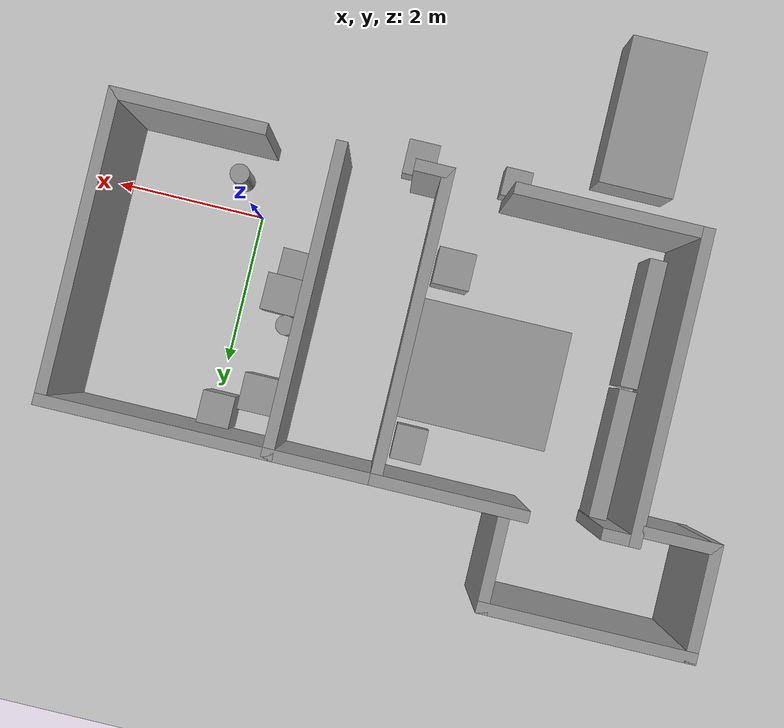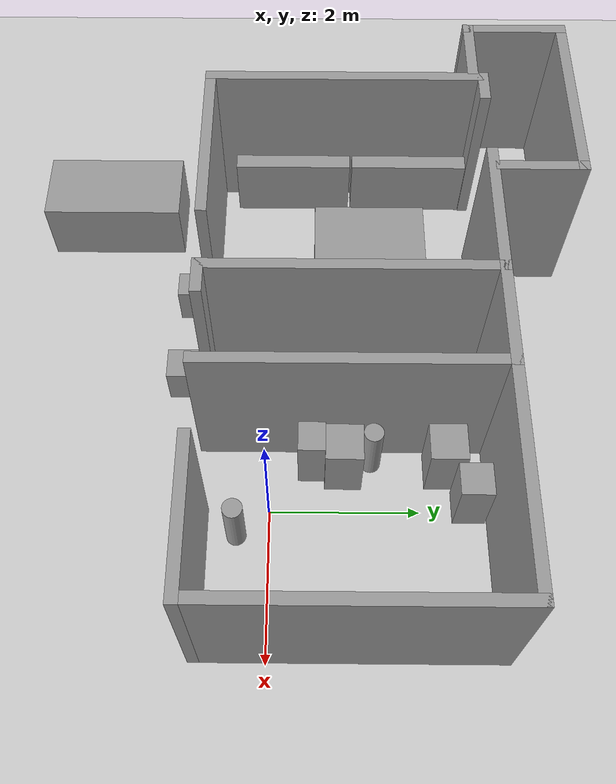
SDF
<sdf version="1.9">
 <world name="default">
  <model name="ground_plane">
   <static>true</static>
   <link name="link">
    <collision name="collision">
     <geometry><plane><normal>0 0 1</normal><size>100 100</size></plane></geometry>
     <surface><friction><ode><mu>100</mu><mu2>50</mu2></ode></friction></surface>
    </collision>
    <visual name="visual">
     <cast_shadows>false</cast_shadows>
     <geometry><plane><normal>0 0 1</normal><size>100 100</size></plane></geometry>
     <material>
      <script><uri>file://media/materials/scripts/gazebo.material</uri><name>Gazebo/Grey</name></script>
     </material>
    </visual>
   </link>
  </model>
  <model name="cma_escritorio">
   <pose>-1.8304 1.03024 0 0 0 0</pose>
   <link name="Wall_11">
    <collision name="Wall_11_Collision">
     <geometry><box><size>2 0.14999999999999999 2.5</size></box></geometry>
     <pose>0 0 1.25 0 0 0</pose>
    </collision>
    <visual name="Wall_11_Visual">
     <pose>0 0 1.25 0 0 0</pose>
     <geometry><box><size>2 0.14999999999999999 2.5</size></box></geometry>
     <material>
      <script><uri>file://media/materials/scripts/gazebo.material</uri><name>Gazebo/Grey</name></script>
      <ambient>1 1 1 1</ambient>
     </material>
    </visual>
    <pose>-1.3999999999999999 1.9299999999999999 0 0 0 3.1415899999999999</pose>
   </link>
   <link name="Wall_2">
    <collision name="Wall_2_Collision">
     <geometry><box><size>4 0.14999999999999999 2.5</size></box></geometry>
     <pose>0 0 1.25 0 0 0</pose>
    </collision>
    <visual name="Wall_2_Visual">
     <pose>0 0 1.25 0 0 0</pose>
     <geometry><box><size>4 0.14999999999999999 2.5</size></box></geometry>
     <material>
      <script><uri>file://media/materials/scripts/gazebo.material</uri><name>Gazebo/Grey</name></script>
      <ambient>1 1 1 1</ambient>
     </material>
    </visual>
    <pose>0.875 0.0050000000000000001 0 0 0 1.5708</pose>
   </link>
   <link name="Wall_25">
    <collision name="Wall_25_Collision">
     <geometry><box><size>2.5 0.14999999999999999 2.5</size></box></geometry>
     <pose>0 0 1.25 0 0 0</pose>
    </collision>
    <visual name="Wall_25_Visual">
     <pose>0 0 1.25 0 0 0</pose>
     <geometry><box><size>2.5 0.14999999999999999 2.5</size></box></geometry>
     <material>
      <script><uri>file://media/materials/scripts/gazebo.material</uri><name>Gazebo/Grey</name></script>
      <ambient>1 1 1 1</ambient>
     </material>
    </visual>
    <pose>-2.5499999999999998 -1.9299999999999999 0 0 0 3.1415899999999999</pose>
   </link>
   <link name="Wall_26">
    <collision name="Wall_26_Collision">
     <geometry><box><size>4 0.14999999999999999 2.5</size></box></geometry>
     <pose>0 0 1.25 0 0 0</pose>
    </collision>
    <visual name="Wall_26_Visual">
     <pose>0 0 1.25 0 0 0</pose>
     <geometry><box><size>4 0.14999999999999999 2.5</size></box></geometry>
     <material>
      <script><uri>file://media/materials/scripts/gazebo.material</uri><name>Gazebo/Grey</name></script>
      <ambient>1 1 1 1</ambient>
     </material>
    </visual>
    <pose>-3.7250000000000001 -0.0050000000000000001 0 0 0 1.5708</pose>
   </link>
   <link name="Wall_27">
    <collision name="Wall_27_Collision">
     <geometry><box><size>0.5 0.14999999999999999 2.5</size></box></geometry>
     <pose>0 0 1.25 0 0 0</pose>
    </collision>
    <visual name="Wall_27_Visual">
     <pose>0 0 1.25 0 0 0</pose>
     <geometry><box><size>0.5 0.14999999999999999 2.5</size></box></geometry>
     <material>
      <script><uri>file://media/materials/scripts/gazebo.material</uri><name>Gazebo/Grey</name></script>
      <ambient>1 1 1 1</ambient>
     </material>
    </visual>
    <pose>-3.5499999999999998 1.9199999999999999 0 0 0 0</pose>
   </link>
   <link name="Wall_3">
    <collision name="Wall_3_Collision">
     <geometry><box><size>3 0.14999999999999999 2.5</size></box></geometry>
     <pose>0 0 1.25 0 0 0</pose>
    </collision>
    <visual name="Wall_3_Visual">
     <pose>0 0 1.25 0 0 0</pose>
     <geometry><box><size>3 0.14999999999999999 2.5</size></box></geometry>
     <material>
      <script><uri>file://media/materials/scripts/gazebo.material</uri><name>Gazebo/Grey</name></script>
      <ambient>1 1 1 1</ambient>
     </material>
    </visual>
    <pose>2.2999999999999998 1.9299999999999999 0 0 0 0</pose>
   </link>
   <link name="Wall_4">
    <collision name="Wall_4_Collision">
     <geometry><box><size>4 0.14999999999999999 2.5</size></box></geometry>
     <pose>0 0 1.25 0 0 0</pose>
    </collision>
    <visual name="Wall_4_Visual">
     <pose>0 0 1.25 0 0 0</pose>
     <geometry><box><size>4 0.14999999999999999 2.5</size></box></geometry>
     <material>
      <script><uri>file://media/materials/scripts/gazebo.material</uri><name>Gazebo/Grey</name></script>
      <ambient>1 1 1 1</ambient>
     </material>
    </visual>
    <pose>3.7250000000000001 0.0050000000000000001 0 0 0 -1.5708</pose>
   </link>
   <link name="Wall_5">
    <collision name="Wall_5_Collision">
     <geometry><box><size>2 0.14999999999999999 2.5</size></box></geometry>
     <pose>0 0 1.25 0 0 0</pose>
    </collision>
    <visual name="Wall_5_Visual">
     <pose>0 0 1.25 0 0 0</pose>
     <geometry><box><size>2 0.14999999999999999 2.5</size></box></geometry>
     <material>
      <script><uri>file://media/materials/scripts/gazebo.material</uri><name>Gazebo/Grey</name></script>
      <ambient>1 1 1 1</ambient>
     </material>
    </visual>
    <pose>2.7999999999999998 -1.9199999999999999 0 0 0 3.1415899999999999</pose>
   </link>
   <link name="Wall_7">
    <collision name="Wall_7_Collision">
     <geometry><box><size>1.5 0.14999999999999999 2.5</size></box></geometry>
     <pose>0 0 1.25 0 0 0</pose>
    </collision>
    <visual name="Wall_7_Visual">
     <pose>0 0 1.25 0 0 0</pose>
     <geometry><box><size>1.5 0.14999999999999999 2.5</size></box></geometry>
     <material>
      <script><uri>file://media/materials/scripts/gazebo.material</uri><name>Gazebo/Grey</name></script>
      <ambient>1 1 1 1</ambient>
     </material>
    </visual>
    <pose>0.20000000000000001 1.9299999999999999 0 0 0 3.1415899999999999</pose>
   </link>
   <link name="Wall_8">
    <collision name="Wall_8_Collision">
     <geometry><box><size>4 0.14999999999999999 2.5</size></box></geometry>
     <pose>0 0 1.25 0 0 0</pose>
    </collision>
    <visual name="Wall_8_Visual">
     <pose>0 0 1.25 0 0 0</pose>
     <geometry><box><size>4 0.14999999999999999 2.5</size></box></geometry>
     <material>
      <script><uri>file://media/materials/scripts/gazebo.material</uri><name>Gazebo/Grey</name></script>
      <ambient>1 1 1 1</ambient>
     </material>
    </visual>
    <pose>-0.47499999999999998 0.0050000000000000001 0 0 0 -1.5708</pose>
   </link>
   <link name="Wall_9">
    <collision name="Wall_9_Collision">
     <geometry><box><size>0.5 0.14999999999999999 2.5</size></box></geometry>
     <pose>0 0 1.25 0 0 0</pose>
    </collision>
    <visual name="Wall_9_Visual">
     <pose>0 0 1.25 0 0 0</pose>
     <geometry><box><size>0.5 0.14999999999999999 2.5</size></box></geometry>
     <material>
      <script><uri>file://media/materials/scripts/gazebo.material</uri><name>Gazebo/Grey</name></script>
      <ambient>1 1 1 1</ambient>
     </material>
    </visual>
    <pose>-0.29999999999999999 -1.9199999999999999 0 0 0 0</pose>
   </link>
   <static>true</static>
  </model>
  <model name="cma_banheiro">
   <pose>-5.2292800000000002 3.4870999999999999 0 0 0 0</pose>
   <link name="Wall_0">
    <collision name="Wall_0_Collision">
     <geometry><box><size>1 0.14999999999999999 2.5</size></box></geometry>
     <pose>0 0 1.25 0 0 0</pose>
    </collision>
    <visual name="Wall_0_Visual">
     <pose>0 0 1.25 0 0 0</pose>
     <geometry><box><size>1 0.14999999999999999 2.5</size></box></geometry>
     <material>
      <script><uri>file://media/materials/scripts/gazebo.material</uri><name>Gazebo/Grey</name></script>
      <ambient>1 1 1 1</ambient>
     </material>
    </visual>
    <pose>-0.875 -0.67500000000000004 0 0 0 3.1415899999999999</pose>
   </link>
   <link name="Wall_1">
    <collision name="Wall_1_Collision">
     <geometry><box><size>1.5 0.14999999999999999 2.5</size></box></geometry>
     <pose>0 0 1.25 0 0 0</pose>
    </collision>
    <visual name="Wall_1_Visual">
     <pose>0 0 1.25 0 0 0</pose>
     <geometry><box><size>1.5 0.14999999999999999 2.5</size></box></geometry>
     <material>
      <script><uri>file://media/materials/scripts/gazebo.material</uri><name>Gazebo/Grey</name></script>
      <ambient>1 1 1 1</ambient>
     </material>
    </visual>
    <pose>-1.3 0 0 0 0 1.5708</pose>
   </link>
   <link name="Wall_2">
    <collision name="Wall_2_Collision">
     <geometry><box><size>2.75 0.14999999999999999 2.5</size></box></geometry>
     <pose>0 0 1.25 0 0 0</pose>
    </collision>
    <visual name="Wall_2_Visual">
     <pose>0 0 1.25 0 0 0</pose>
     <geometry><box><size>2.75 0.14999999999999999 2.5</size></box></geometry>
     <material>
      <script><uri>file://media/materials/scripts/gazebo.material</uri><name>Gazebo/Grey</name></script>
      <ambient>1 1 1 1</ambient>
     </material>
    </visual>
    <pose>0 0.67500000000000004 0 0 0 0</pose>
   </link>
   <link name="Wall_4">
    <collision name="Wall_4_Collision">
     <geometry><box><size>1.25 0.14999999999999999 2.5</size></box></geometry>
     <pose>0 0 1.25 0 0 0</pose>
    </collision>
    <visual name="Wall_4_Visual">
     <pose>0 0 1.25 0 0 0</pose>
     <geometry><box><size>1.25 0.14999999999999999 2.5</size></box></geometry>
     <material>
      <script><uri>file://media/materials/scripts/gazebo.material</uri><name>Gazebo/Grey</name></script>
      <ambient>1 1 1 1</ambient>
     </material>
    </visual>
    <pose>1.3 0.125 0 0 0 -1.5708</pose>
   </link>
   <static>true</static>
  </model>
  <model name="cma_lixo">
   <link name="link_1">
    <pose>0.88296200000000002 1.81586 0.5 0 0 0</pose>
    <inertial>
     <mass>0.068764400000000003</mass>
     <inertia>
      <ixx>0.00602588</ixx>
      <ixy>0</ixy>
      <ixz>0</ixz>
      <iyy>0.00602588</iyy>
      <iyz>0</iyz>
      <izz>0.00059106800000000004</izz>
     </inertia>
    </inertial>
    <visual name="visual">
     <geometry><cylinder><radius>0.13111200000000001</radius><length>1</length></cylinder></geometry>
     <material>
      <lighting>true</lighting>
      <script><uri>file://media/materials/scripts/gazebo.material</uri><name>Gazebo/Grey</name></script>
      <ambient>0.300000012 0.300000012 0.300000012 1</ambient>
      <diffuse>0.699999988 0.699999988 0.699999988 1</diffuse>
      <specular>0.00999999978 0.00999999978 0.00999999978 1</specular>
      <emissive>0 0 0 1</emissive>
     </material>
    </visual>
    <collision name="collision">
     <geometry><cylinder><radius>0.13111200000000001</radius><length>1</length></cylinder></geometry>
     <surface>
      <friction>
       <ode><mu>1</mu><mu2>1</mu2><fdir1>0 0 0</fdir1><slip1>0</slip1><slip2>0</slip2></ode>
       <torsional>
        <coefficient>1</coefficient>
        <patch_radius>0</patch_radius>
        <surface_radius>0</surface_radius>
        <use_patch_radius>true</use_patch_radius>
        <ode><slip>0</slip></ode>
       </torsional>
      </friction>
      <bounce><restitution_coefficient>0</restitution_coefficient><threshold>1000000</threshold></bounce>
      <contact>
       <collide_without_contact>false</collide_without_contact>
       <collide_without_contact_bitmask>1</collide_without_contact_bitmask>
       <collide_bitmask>1</collide_bitmask>
       <ode>
        <soft_cfm>0</soft_cfm>
        <soft_erp>0.20000000000000001</soft_erp>
        <kp>10000000000000</kp>
        <kd>1</kd>
        <max_vel>0.01</max_vel>
        <min_depth>0</min_depth>
       </ode>
       <bullet>
        <split_impulse>true</split_impulse>
        <split_impulse_penetration_threshold>-0.01</split_impulse_penetration_threshold>
        <soft_cfm>0</soft_cfm>
        <soft_erp>0.20000000000000001</soft_erp>
        <kp>10000000000000</kp>
        <kd>1</kd>
       </bullet>
      </contact>
     </surface>
    </collision>
   </link>
   <static>false</static>
   <pose>-1.35785 -1.5254399999999999 -3.9999999999999998e-06 0 0 -0.54309700000000016</pose>
  </model>
  <model name="cma_gaveteiro_pequeno_0">
   <link name="link_0">
    <pose>0.25617400000000001 1.2505500000000001 0.5 0 0 0</pose>
    <inertial>
     <mass>0.18718599999999999</mass>
     <inertia>
      <ixx>0.018509999999999999</ixx>
      <ixy>0</ixy>
      <ixz>0</ixz>
      <iyy>0.018527600000000002</iyy>
      <iyz>0</iyz>
      <izz>0.00583981</izz>
     </inertia>
    </inertial>
    <visual name="visual">
     <geometry><box><size>0.43331700000000001 0.432002 1</size></box></geometry>
     <material>
      <lighting>true</lighting>
      <script><uri>file://media/materials/scripts/gazebo.material</uri><name>Gazebo/Grey</name></script>
      <ambient>0.300000012 0.300000012 0.300000012 1</ambient>
      <diffuse>0.699999988 0.699999988 0.699999988 1</diffuse>
      <specular>0.00999999978 0.00999999978 0.00999999978 1</specular>
      <emissive>0 0 0 1</emissive>
     </material>
    </visual>
    <collision name="collision">
     <geometry><box><size>0.43331700000000001 0.432002 1</size></box></geometry>
     <surface>
      <friction>
       <ode><mu>1</mu><mu2>1</mu2><fdir1>0 0 0</fdir1><slip1>0</slip1><slip2>0</slip2></ode>
       <torsional>
        <coefficient>1</coefficient>
        <patch_radius>0</patch_radius>
        <surface_radius>0</surface_radius>
        <use_patch_radius>true</use_patch_radius>
        <ode><slip>0</slip></ode>
       </torsional>
      </friction>
      <bounce><restitution_coefficient>0</restitution_coefficient><threshold>1000000</threshold></bounce>
      <contact>
       <collide_without_contact>false</collide_without_contact>
       <collide_without_contact_bitmask>1</collide_without_contact_bitmask>
       <collide_bitmask>1</collide_bitmask>
       <ode>
        <soft_cfm>0</soft_cfm>
        <soft_erp>0.20000000000000001</soft_erp>
        <kp>10000000000000</kp>
        <kd>1</kd>
        <max_vel>0.01</max_vel>
        <min_depth>0</min_depth>
       </ode>
       <bullet>
        <split_impulse>true</split_impulse>
        <split_impulse_penetration_threshold>-0.01</split_impulse_penetration_threshold>
        <soft_cfm>0</soft_cfm>
        <soft_erp>0.20000000000000001</soft_erp>
        <kp>10000000000000</kp>
        <kd>1</kd>
       </bullet>
      </contact>
     </surface>
    </collision>
   </link>
   <static>false</static>
   <pose>-0.33604800000000001 1.3951199999999999 3.0000000000000001e-06 -1.9999999999999999e-06 4.9999999999999996e-06 -5.8999999999999998e-05</pose>
  </model>
  <model name="cma_gaveteiro">
   <link name="link_0">
    <pose>0 3.9999999999999998e-06 0 0 0 0</pose>
    <inertial>
     <mass>0.245086</mass>
     <inertia>
      <ixx>0.025418</ixx>
      <ixy>0</ixy>
      <ixz>0</ixz>
      <iyy>0.025441100000000001</iyy>
      <iyz>0</iyz>
      <izz>0.010011300000000001</izz>
     </inertia>
    </inertial>
    <visual name="visual">
     <geometry><box><size>0.49565700000000001 0.49449100000000001 1</size></box></geometry>
     <material>
      <lighting>true</lighting>
      <script><uri>file://media/materials/scripts/gazebo.material</uri><name>Gazebo/Grey</name></script>
      <ambient>0.300000012 0.300000012 0.300000012 1</ambient>
      <diffuse>0.699999988 0.699999988 0.699999988 1</diffuse>
      <specular>0.00999999978 0.00999999978 0.00999999978 1</specular>
      <emissive>0 0 0 1</emissive>
     </material>
    </visual>
    <collision name="collision">
     <geometry><box><size>0.49565700000000001 0.49449100000000001 1</size></box></geometry>
     <surface>
      <friction>
       <ode><mu>1</mu><mu2>1</mu2><fdir1>0 0 0</fdir1><slip1>0</slip1><slip2>0</slip2></ode>
       <torsional>
        <coefficient>1</coefficient>
        <patch_radius>0</patch_radius>
        <surface_radius>0</surface_radius>
        <use_patch_radius>true</use_patch_radius>
        <ode><slip>0</slip></ode>
       </torsional>
      </friction>
      <bounce><restitution_coefficient>0</restitution_coefficient><threshold>1000000</threshold></bounce>
      <contact>
       <collide_without_contact>false</collide_without_contact>
       <collide_without_contact_bitmask>1</collide_without_contact_bitmask>
       <collide_bitmask>1</collide_bitmask>
       <ode>
        <soft_cfm>0</soft_cfm>
        <soft_erp>0.20000000000000001</soft_erp>
        <kp>10000000000000</kp>
        <kd>1</kd>
        <max_vel>0.01</max_vel>
        <min_depth>0</min_depth>
       </ode>
       <bullet>
        <split_impulse>true</split_impulse>
        <split_impulse_penetration_threshold>-0.01</split_impulse_penetration_threshold>
        <soft_cfm>0</soft_cfm>
        <soft_erp>0.20000000000000001</soft_erp>
        <kp>10000000000000</kp>
        <kd>1</kd>
       </bullet>
      </contact>
     </surface>
    </collision>
   </link>
   <static>false</static>
   <pose>-0.59199299999999999 2.3262100000000001 0.50000100000000003 -2.0000000000000008e-06 -1.0000000000000004e-06 0.00043400000000000003</pose>
  </model>
  <model name="cma_gaveteiro_0">
   <link name="link_0">
    <pose>0 3.9999999999999998e-06 0 0 0 0</pose>
    <inertial>
     <mass>0.245086</mass>
     <inertia>
      <ixx>0.025418</ixx>
      <ixy>0</ixy>
      <ixz>0</ixz>
      <iyy>0.025441100000000001</iyy>
      <iyz>0</iyz>
      <izz>0.010011300000000001</izz>
     </inertia>
    </inertial>
    <visual name="visual">
     <geometry><box><size>0.49565700000000001 0.49449100000000001 1</size></box></geometry>
     <material>
      <lighting>true</lighting>
      <script><uri>file://media/materials/scripts/gazebo.material</uri><name>Gazebo/Grey</name></script>
      <ambient>0.300000012 0.300000012 0.300000012 1</ambient>
      <diffuse>0.699999988 0.699999988 0.699999988 1</diffuse>
      <specular>0.00999999978 0.00999999978 0.00999999978 1</specular>
      <emissive>0 0 0 1</emissive>
     </material>
    </visual>
    <collision name="collision">
     <geometry><box><size>0.49565700000000001 0.49449100000000001 1</size></box></geometry>
     <surface>
      <friction>
       <ode><mu>1</mu><mu2>1</mu2><fdir1>0 0 0</fdir1><slip1>0</slip1><slip2>0</slip2></ode>
       <torsional>
        <coefficient>1</coefficient>
        <patch_radius>0</patch_radius>
        <surface_radius>0</surface_radius>
        <use_patch_radius>true</use_patch_radius>
        <ode><slip>0</slip></ode>
       </torsional>
      </friction>
      <bounce><restitution_coefficient>0</restitution_coefficient><threshold>1000000</threshold></bounce>
      <contact>
       <collide_without_contact>false</collide_without_contact>
       <collide_without_contact_bitmask>1</collide_without_contact_bitmask>
       <collide_bitmask>1</collide_bitmask>
       <ode>
        <soft_cfm>0</soft_cfm>
        <soft_erp>0.20000000000000001</soft_erp>
        <kp>10000000000000</kp>
        <kd>1</kd>
        <max_vel>0.01</max_vel>
        <min_depth>0</min_depth>
       </ode>
       <bullet>
        <split_impulse>true</split_impulse>
        <split_impulse_penetration_threshold>-0.01</split_impulse_penetration_threshold>
        <soft_cfm>0</soft_cfm>
        <soft_erp>0.20000000000000001</soft_erp>
        <kp>10000000000000</kp>
        <kd>1</kd>
       </bullet>
      </contact>
     </surface>
    </collision>
   </link>
   <static>false</static>
   <pose>-0.57789400000000002 0.98410299999999995 0.5 -2.0000000000000003e-06 -3.0000000000000005e-06 -0.014209000000000001</pose>
  </model>
  <model name="cma_lixo_0">
   <link name="link_1">
    <pose>0.88296200000000002 1.81586 0.5 0 0 0</pose>
    <inertial>
     <mass>0.068764400000000003</mass>
     <inertia>
      <ixx>0.00602588</ixx>
      <ixy>0</ixy>
      <ixz>0</ixz>
      <iyy>0.00602588</iyy>
      <iyz>0</iyz>
      <izz>0.00059106800000000004</izz>
     </inertia>
    </inertial>
    <visual name="visual">
     <geometry><cylinder><radius>0.13111200000000001</radius><length>1</length></cylinder></geometry>
     <material>
      <lighting>true</lighting>
      <script><uri>file://media/materials/scripts/gazebo.material</uri><name>Gazebo/Grey</name></script>
      <ambient>0.300000012 0.300000012 0.300000012 1</ambient>
      <diffuse>0.699999988 0.699999988 0.699999988 1</diffuse>
      <specular>0.00999999978 0.00999999978 0.00999999978 1</specular>
      <emissive>0 0 0 1</emissive>
     </material>
    </visual>
    <collision name="collision">
     <geometry><cylinder><radius>0.13111200000000001</radius><length>1</length></cylinder></geometry>
     <surface>
      <friction>
       <ode><mu>1</mu><mu2>1</mu2><fdir1>0 0 0</fdir1><slip1>0</slip1><slip2>0</slip2></ode>
       <torsional>
        <coefficient>1</coefficient>
        <patch_radius>0</patch_radius>
        <surface_radius>0</surface_radius>
        <use_patch_radius>true</use_patch_radius>
        <ode><slip>0</slip></ode>
       </torsional>
      </friction>
      <bounce><restitution_coefficient>0</restitution_coefficient><threshold>1000000</threshold></bounce>
      <contact>
       <collide_without_contact>false</collide_without_contact>
       <collide_without_contact_bitmask>1</collide_without_contact_bitmask>
       <collide_bitmask>1</collide_bitmask>
       <ode>
        <soft_cfm>0</soft_cfm>
        <soft_erp>0.20000000000000001</soft_erp>
        <kp>10000000000000</kp>
        <kd>1</kd>
        <max_vel>0.01</max_vel>
        <min_depth>0</min_depth>
       </ode>
       <bullet>
        <split_impulse>true</split_impulse>
        <split_impulse_penetration_threshold>-0.01</split_impulse_penetration_threshold>
        <soft_cfm>0</soft_cfm>
        <soft_erp>0.20000000000000001</soft_erp>
        <kp>10000000000000</kp>
        <kd>1</kd>
       </bullet>
      </contact>
     </surface>
    </collision>
   </link>
   <static>false</static>
   <pose>-1.6093500000000001 -0.44272899999999998 -9.0000000000000002e-06 0 0 -0.0097769999999999992</pose>
  </model>
  <model name="cma_sofa2">
   <link name="link_0">
    <pose>-4.6680000000000001 -2.0060099999999998 0.5 0 0 0</pose>
    <inertial>
     <mass>1.9868300000000001</mass>
     <inertia>
      <ixx>0.81914900000000002</ixx>
      <ixy>0</ixy>
      <ixz>0</ixz>
      <iyy>0.33113799999999999</iyy>
      <iyz>0</iyz>
      <izz>0.81914900000000002</izz>
     </inertia>
    </inertial>
    <visual name="visual">
     <geometry><box><size>1 1.98682 1</size></box></geometry>
     <material>
      <lighting>true</lighting>
      <script><uri>file://media/materials/scripts/gazebo.material</uri><name>Gazebo/Grey</name></script>
      <ambient>0.300000012 0.300000012 0.300000012 1</ambient>
      <diffuse>0.699999988 0.699999988 0.699999988 1</diffuse>
      <specular>0.00999999978 0.00999999978 0.00999999978 1</specular>
      <emissive>0 0 0 1</emissive>
     </material>
    </visual>
    <collision name="collision">
     <geometry><box><size>1 1.98682 1</size></box></geometry>
     <surface>
      <friction>
       <ode><mu>1</mu><mu2>1</mu2><fdir1>0 0 0</fdir1><slip1>0</slip1><slip2>0</slip2></ode>
       <torsional>
        <coefficient>1</coefficient>
        <patch_radius>0</patch_radius>
        <surface_radius>0</surface_radius>
        <use_patch_radius>true</use_patch_radius>
        <ode><slip>0</slip></ode>
       </torsional>
      </friction>
      <bounce><restitution_coefficient>0</restitution_coefficient><threshold>1000000</threshold></bounce>
      <contact>
       <collide_without_contact>false</collide_without_contact>
       <collide_without_contact_bitmask>1</collide_without_contact_bitmask>
       <collide_bitmask>1</collide_bitmask>
       <ode>
        <soft_cfm>0</soft_cfm>
        <soft_erp>0.20000000000000001</soft_erp>
        <kp>10000000000000</kp>
        <kd>1</kd>
        <max_vel>0.01</max_vel>
        <min_depth>0</min_depth>
       </ode>
       <bullet>
        <split_impulse>true</split_impulse>
        <split_impulse_penetration_threshold>-0.01</split_impulse_penetration_threshold>
        <soft_cfm>0</soft_cfm>
        <soft_erp>0.20000000000000001</soft_erp>
        <kp>10000000000000</kp>
        <kd>1</kd>
       </bullet>
      </contact>
     </surface>
    </collision>
   </link>
   <static>false</static>
   <pose>-0.095332 -0.407806 2.0000000000000002e-05 0 -5.0000000000000013e-06 9.9999999999999995e-07</pose>
  </model>
  <model name="cma_bau_s">
   <link name="link_1">
    <pose>0.109594 0.27229300000000001 0 0 0 0</pose>
    <inertial>
     <mass>0.12547900000000001</mass>
     <inertia>
      <ixx>0.0064194300000000003</ixx>
      <ixy>0</ixy>
      <ixz>0</ixz>
      <iyy>0.0059753999999999996</iyy>
      <iyz>0</iyz>
      <izz>0.0042208499999999999</izz>
     </inertia>
    </inertial>
    <visual name="visual">
     <geometry><box><size>0.42496400000000001 0.47228300000000001 0.62511799999999995</size></box></geometry>
     <material>
      <lighting>true</lighting>
      <script><uri>file://media/materials/scripts/gazebo.material</uri><name>Gazebo/Grey</name></script>
      <ambient>0.300000012 0.300000012 0.300000012 1</ambient>
      <diffuse>0.699999988 0.699999988 0.699999988 1</diffuse>
      <specular>0.00999999978 0.00999999978 0.00999999978 1</specular>
      <emissive>0 0 0 1</emissive>
     </material>
    </visual>
    <collision name="collision">
     <geometry><box><size>0.42496400000000001 0.47228300000000001 0.62511799999999995</size></box></geometry>
     <surface>
      <friction>
       <ode><mu>1</mu><mu2>1</mu2><fdir1>0 0 0</fdir1><slip1>0</slip1><slip2>0</slip2></ode>
       <torsional>
        <coefficient>1</coefficient>
        <patch_radius>0</patch_radius>
        <surface_radius>0</surface_radius>
        <use_patch_radius>true</use_patch_radius>
        <ode><slip>0</slip></ode>
       </torsional>
      </friction>
      <bounce><restitution_coefficient>0</restitution_coefficient><threshold>1000000</threshold></bounce>
      <contact>
       <collide_without_contact>false</collide_without_contact>
       <collide_without_contact_bitmask>1</collide_without_contact_bitmask>
       <collide_bitmask>1</collide_bitmask>
       <ode>
        <soft_cfm>0</soft_cfm>
        <soft_erp>0.20000000000000001</soft_erp>
        <kp>10000000000000</kp>
        <kd>1</kd>
        <max_vel>0.01</max_vel>
        <min_depth>0</min_depth>
       </ode>
       <bullet>
        <split_impulse>true</split_impulse>
        <split_impulse_penetration_threshold>-0.01</split_impulse_penetration_threshold>
        <soft_cfm>0</soft_cfm>
        <soft_erp>0.20000000000000001</soft_erp>
        <kp>10000000000000</kp>
        <kd>1</kd>
       </bullet>
      </contact>
     </surface>
    </collision>
   </link>
   <static>false</static>
   <pose>-2.0429400000000002 -1.4857 0.31255500000000003 3.999999999999999e-06 -1.1999999999999999e-05 0.000134</pose>
  </model>
  <model name="cma_apoio_s">
   <link name="link_1">
    <pose>-1.9376 -3.4655100000000001 0.5 0 0 0</pose>
    <inertial>
     <mass>0.087846300000000002</mass>
     <inertia>
      <ixx>0.0039269600000000002</ixx>
      <ixy>0</ixy>
      <ixz>0</ixz>
      <iyy>0.0038535599999999998</iyy>
      <iyz>0</iyz>
      <izz>0.0020587000000000001</izz>
     </inertia>
    </inertial>
    <visual name="visual">
     <geometry><box><size>0.36822300000000002 0.38159199999999999 0.62511799999999995</size></box></geometry>
     <material>
      <lighting>true</lighting>
      <script><uri>file://media/materials/scripts/gazebo.material</uri><name>Gazebo/Grey</name></script>
      <ambient>0.300000012 0.300000012 0.300000012 1</ambient>
      <diffuse>0.699999988 0.699999988 0.699999988 1</diffuse>
      <specular>0.00999999978 0.00999999978 0.00999999978 1</specular>
      <emissive>0 0 0 1</emissive>
     </material>
    </visual>
    <collision name="collision">
     <geometry><box><size>0.36822300000000002 0.38159199999999999 0.62511799999999995</size></box></geometry>
     <surface>
      <friction>
       <ode><mu>1</mu><mu2>1</mu2><fdir1>0 0 0</fdir1><slip1>0</slip1><slip2>0</slip2></ode>
       <torsional>
        <coefficient>1</coefficient>
        <patch_radius>0</patch_radius>
        <surface_radius>0</surface_radius>
        <use_patch_radius>true</use_patch_radius>
        <ode><slip>0</slip></ode>
       </torsional>
      </friction>
      <bounce><restitution_coefficient>0</restitution_coefficient><threshold>1000000</threshold></bounce>
      <contact>
       <collide_without_contact>false</collide_without_contact>
       <collide_without_contact_bitmask>1</collide_without_contact_bitmask>
       <collide_bitmask>1</collide_bitmask>
       <ode>
        <soft_cfm>0</soft_cfm>
        <soft_erp>0.20000000000000001</soft_erp>
        <kp>10000000000000</kp>
        <kd>1</kd>
        <max_vel>0.01</max_vel>
        <min_depth>0</min_depth>
       </ode>
       <bullet>
        <split_impulse>true</split_impulse>
        <split_impulse_penetration_threshold>-0.01</split_impulse_penetration_threshold>
        <soft_cfm>0</soft_cfm>
        <soft_erp>0.20000000000000001</soft_erp>
        <kp>10000000000000</kp>
        <kd>1</kd>
       </bullet>
      </contact>
     </surface>
    </collision>
   </link>
   <static>false</static>
   <pose>-1.30792 2.2703600000000002 -0.187469 -1.2e-05 -9.0000000000000019e-06 -0.0011540000000000003</pose>
  </model>
  <model name="cma_cama_c_0">
   <link name="link_0">
    <pose>5.0000000000000004e-06 -3.9999999999999998e-06 0 0 0 0</pose>
    <inertial>
     <mass>3.1835800000000001</mass>
     <inertia>
      <ixx>0.93486199999999997</ixx>
      <ixy>0</ixy>
      <ixz>0</ixz>
      <iyy>1.3306899999999999</iyy>
      <iyz>0</iyz>
      <izz>1.7349600000000001</izz>
     </inertia>
    </inertial>
    <visual name="visual">
     <geometry><box><size>2.0039400000000001 1.58866 1</size></box></geometry>
     <material>
      <lighting>true</lighting>
      <script><uri>file://media/materials/scripts/gazebo.material</uri><name>Gazebo/Grey</name></script>
      <ambient>0.300000012 0.300000012 0.300000012 1</ambient>
      <diffuse>0.699999988 0.699999988 0.699999988 1</diffuse>
      <specular>0.00999999978 0.00999999978 0.00999999978 1</specular>
      <emissive>0 0 0 1</emissive>
     </material>
    </visual>
    <collision name="collision">
     <geometry><box><size>2.0039400000000001 1.58866 1</size></box></geometry>
     <surface>
      <friction>
       <ode><mu>1</mu><mu2>1</mu2><fdir1>0 0 0</fdir1><slip1>0</slip1><slip2>0</slip2></ode>
       <torsional>
        <coefficient>1</coefficient>
        <patch_radius>0</patch_radius>
        <surface_radius>0</surface_radius>
        <use_patch_radius>true</use_patch_radius>
        <ode><slip>0</slip></ode>
       </torsional>
      </friction>
      <bounce><restitution_coefficient>0</restitution_coefficient><threshold>1000000</threshold></bounce>
      <contact>
       <collide_without_contact>false</collide_without_contact>
       <collide_without_contact_bitmask>1</collide_without_contact_bitmask>
       <collide_bitmask>1</collide_bitmask>
       <ode>
        <soft_cfm>0</soft_cfm>
        <soft_erp>0.20000000000000001</soft_erp>
        <kp>10000000000000</kp>
        <kd>1</kd>
        <max_vel>0.01</max_vel>
        <min_depth>0</min_depth>
       </ode>
       <bullet>
        <split_impulse>true</split_impulse>
        <split_impulse_penetration_threshold>-0.01</split_impulse_penetration_threshold>
        <soft_cfm>0</soft_cfm>
        <soft_erp>0.20000000000000001</soft_erp>
        <kp>10000000000000</kp>
        <kd>1</kd>
       </bullet>
      </contact>
     </surface>
    </collision>
   </link>
   <static>false</static>
   <pose>-3.3823699999999999 1.38788 0.5 0 0 -2.0000000000000003e-06</pose>
  </model>
  <model name="cma_bau_s_0">
   <link name="link_1">
    <pose>0.109594 0.27229300000000001 0 0 0 0</pose>
    <inertial>
     <mass>0.12547900000000001</mass>
     <inertia>
      <ixx>0.0064194300000000003</ixx>
      <ixy>0</ixy>
      <ixz>0</ixz>
      <iyy>0.0059753999999999996</iyy>
      <iyz>0</iyz>
      <izz>0.0042208499999999999</izz>
     </inertia>
    </inertial>
    <visual name="visual">
     <geometry><box><size>0.42496400000000001 0.47228300000000001 0.62511799999999995</size></box></geometry>
     <material>
      <lighting>true</lighting>
      <script><uri>file://media/materials/scripts/gazebo.material</uri><name>Gazebo/Grey</name></script>
      <ambient>0.300000012 0.300000012 0.300000012 1</ambient>
      <diffuse>0.699999988 0.699999988 0.699999988 1</diffuse>
      <specular>0.00999999978 0.00999999978 0.00999999978 1</specular>
      <emissive>0 0 0 1</emissive>
     </material>
    </visual>
    <collision name="collision">
     <geometry><box><size>0.42496400000000001 0.47228300000000001 0.62511799999999995</size></box></geometry>
     <surface>
      <friction>
       <ode><mu>1</mu><mu2>1</mu2><fdir1>0 0 0</fdir1><slip1>0</slip1><slip2>0</slip2></ode>
       <torsional>
        <coefficient>1</coefficient>
        <patch_radius>0</patch_radius>
        <surface_radius>0</surface_radius>
        <use_patch_radius>true</use_patch_radius>
        <ode><slip>0</slip></ode>
       </torsional>
      </friction>
      <bounce><restitution_coefficient>0</restitution_coefficient><threshold>1000000</threshold></bounce>
      <contact>
       <collide_without_contact>false</collide_without_contact>
       <collide_without_contact_bitmask>1</collide_without_contact_bitmask>
       <collide_bitmask>1</collide_bitmask>
       <ode>
        <soft_cfm>0</soft_cfm>
        <soft_erp>0.20000000000000001</soft_erp>
        <kp>10000000000000</kp>
        <kd>1</kd>
        <max_vel>0.01</max_vel>
        <min_depth>0</min_depth>
       </ode>
       <bullet>
        <split_impulse>true</split_impulse>
        <split_impulse_penetration_threshold>-0.01</split_impulse_penetration_threshold>
        <soft_cfm>0</soft_cfm>
        <soft_erp>0.20000000000000001</soft_erp>
        <kp>10000000000000</kp>
        <kd>1</kd>
       </bullet>
      </contact>
     </surface>
    </collision>
   </link>
   <static>false</static>
   <pose>-2.7651500000000002 2.2427999999999999 0.31255899999999998 0 0 -0.000122</pose>
  </model>
  <model name="cma_gaveteiro_1">
   <link name="link_0">
    <pose>0 3.9999999999999998e-06 0 0 0 0</pose>
    <inertial>
     <mass>0.245086</mass>
     <inertia>
      <ixx>0.025418</ixx>
      <ixy>0</ixy>
      <ixz>0</ixz>
      <iyy>0.025441100000000001</iyy>
      <iyz>0</iyz>
      <izz>0.010011300000000001</izz>
     </inertia>
    </inertial>
    <visual name="visual">
     <geometry><box><size>0.49565700000000001 0.49449100000000001 1</size></box></geometry>
     <material>
      <lighting>true</lighting>
      <script><uri>file://media/materials/scripts/gazebo.material</uri><name>Gazebo/Grey</name></script>
      <ambient>0.300000012 0.300000012 0.300000012 1</ambient>
      <diffuse>0.699999988 0.699999988 0.699999988 1</diffuse>
      <specular>0.00999999978 0.00999999978 0.00999999978 1</specular>
      <emissive>0 0 0 1</emissive>
     </material>
    </visual>
    <collision name="collision">
     <geometry><box><size>0.49565700000000001 0.49449100000000001 1</size></box></geometry>
     <surface>
      <friction>
       <ode><mu>1</mu><mu2>1</mu2><fdir1>0 0 0</fdir1><slip1>0</slip1><slip2>0</slip2></ode>
       <torsional>
        <coefficient>1</coefficient>
        <patch_radius>0</patch_radius>
        <surface_radius>0</surface_radius>
        <use_patch_radius>true</use_patch_radius>
        <ode><slip>0</slip></ode>
       </torsional>
      </friction>
      <bounce><restitution_coefficient>0</restitution_coefficient><threshold>1000000</threshold></bounce>
      <contact>
       <collide_without_contact>false</collide_without_contact>
       <collide_without_contact_bitmask>1</collide_without_contact_bitmask>
       <collide_bitmask>1</collide_bitmask>
       <ode>
        <soft_cfm>0</soft_cfm>
        <soft_erp>0.20000000000000001</soft_erp>
        <kp>10000000000000</kp>
        <kd>1</kd>
        <max_vel>0.01</max_vel>
        <min_depth>0</min_depth>
       </ode>
       <bullet>
        <split_impulse>true</split_impulse>
        <split_impulse_penetration_threshold>-0.01</split_impulse_penetration_threshold>
        <soft_cfm>0</soft_cfm>
        <soft_erp>0.20000000000000001</soft_erp>
        <kp>10000000000000</kp>
        <kd>1</kd>
       </bullet>
      </contact>
     </surface>
    </collision>
   </link>
   <static>false</static>
   <pose>-2.68859 0.13162299999999999 0.5 0 0 -9.6000000000000002e-05</pose>
  </model>
  <model name="cma_armario_6">
   <link name="link_0">
    <pose>1.3215699999999999 0.88517800000000002 0.5 0 0 0</pose>
    <inertial>
     <mass>0.40237600000000001</mass>
     <inertia>
      <ixx>0.0353686</ixx>
      <ixy>0</ixy>
      <ixz>0</ixz>
      <iyy>0.13261600000000001</iyy>
      <iyz>0</iyz>
      <izz>0.100922</izz>
     </inertia>
    </inertial>
    <visual name="visual">
     <geometry><box><size>1.7187699999999999 0.234069 1</size></box></geometry>
     <material>
      <lighting>true</lighting>
      <script><uri>file://media/materials/scripts/gazebo.material</uri><name>Gazebo/Grey</name></script>
      <ambient>0.300000012 0.300000012 0.300000012 1</ambient>
      <diffuse>0.699999988 0.699999988 0.699999988 1</diffuse>
      <specular>0.00999999978 0.00999999978 0.00999999978 1</specular>
      <emissive>0 0 0 1</emissive>
     </material>
    </visual>
    <collision name="collision">
     <geometry><box><size>1.7187699999999999 0.234069 1</size></box></geometry>
     <surface>
      <friction>
       <ode><mu>1</mu><mu2>1</mu2><fdir1>0 0 0</fdir1><slip1>0</slip1><slip2>0</slip2></ode>
       <torsional>
        <coefficient>1</coefficient>
        <patch_radius>0</patch_radius>
        <surface_radius>0</surface_radius>
        <use_patch_radius>true</use_patch_radius>
        <ode><slip>0</slip></ode>
       </torsional>
      </friction>
      <bounce><restitution_coefficient>0</restitution_coefficient><threshold>1000000</threshold></bounce>
      <contact>
       <collide_without_contact>false</collide_without_contact>
       <collide_without_contact_bitmask>1</collide_without_contact_bitmask>
       <collide_bitmask>1</collide_bitmask>
       <ode>
        <soft_cfm>0</soft_cfm>
        <soft_erp>0.20000000000000001</soft_erp>
        <kp>10000000000000</kp>
        <kd>1</kd>
        <max_vel>0.01</max_vel>
        <min_depth>0</min_depth>
       </ode>
       <bullet>
        <split_impulse>true</split_impulse>
        <split_impulse_penetration_threshold>-0.01</split_impulse_penetration_threshold>
        <soft_cfm>0</soft_cfm>
        <soft_erp>0.20000000000000001</soft_erp>
        <kp>10000000000000</kp>
        <kd>1</kd>
       </bullet>
      </contact>
     </surface>
    </collision>
   </link>
   <static>false</static>
   <pose>-4.3865999999999996 0.68754400000000004 0 0 0 1.56592</pose>
  </model>
  <model name="cma_armario_7">
   <link name="link_0">
    <pose>1.3215699999999999 0.88517800000000002 0.5 0 0 0</pose>
    <inertial>
     <mass>0.40237600000000001</mass>
     <inertia>
      <ixx>0.0353686</ixx>
      <ixy>0</ixy>
      <ixz>0</ixz>
      <iyy>0.13261600000000001</iyy>
      <iyz>0</iyz>
      <izz>0.100922</izz>
     </inertia>
    </inertial>
    <visual name="visual">
     <geometry><box><size>1.7187699999999999 0.234069 1</size></box></geometry>
     <material>
      <lighting>true</lighting>
      <script><uri>file://media/materials/scripts/gazebo.material</uri><name>Gazebo/Grey</name></script>
      <ambient>0.300000012 0.300000012 0.300000012 1</ambient>
      <diffuse>0.699999988 0.699999988 0.699999988 1</diffuse>
      <specular>0.00999999978 0.00999999978 0.00999999978 1</specular>
      <emissive>0 0 0 1</emissive>
     </material>
    </visual>
    <collision name="collision">
     <geometry><box><size>1.7187699999999999 0.234069 1</size></box></geometry>
     <surface>
      <friction>
       <ode><mu>1</mu><mu2>1</mu2><fdir1>0 0 0</fdir1><slip1>0</slip1><slip2>0</slip2></ode>
       <torsional>
        <coefficient>1</coefficient>
        <patch_radius>0</patch_radius>
        <surface_radius>0</surface_radius>
        <use_patch_radius>true</use_patch_radius>
        <ode><slip>0</slip></ode>
       </torsional>
      </friction>
      <bounce><restitution_coefficient>0</restitution_coefficient><threshold>1000000</threshold></bounce>
      <contact>
       <collide_without_contact>false</collide_without_contact>
       <collide_without_contact_bitmask>1</collide_without_contact_bitmask>
       <collide_bitmask>1</collide_bitmask>
       <ode>
        <soft_cfm>0</soft_cfm>
        <soft_erp>0.20000000000000001</soft_erp>
        <kp>10000000000000</kp>
        <kd>1</kd>
        <max_vel>0.01</max_vel>
        <min_depth>0</min_depth>
       </ode>
       <bullet>
        <split_impulse>true</split_impulse>
        <split_impulse_penetration_threshold>-0.01</split_impulse_penetration_threshold>
        <soft_cfm>0</soft_cfm>
        <soft_erp>0.20000000000000001</soft_erp>
        <kp>10000000000000</kp>
        <kd>1</kd>
       </bullet>
      </contact>
     </surface>
    </collision>
   </link>
   <static>false</static>
   <pose>-4.3857100000000004 -1.06548 0 0 0 1.56874</pose>
  </model>
  <model name="cma_gaveteiro_pequeno_e">
   <link name="link_1">
    <pose>9.9999999999999995e-07 -3.0000000000000001e-06 0 0 0 0</pose>
    <inertial>
     <mass>0.14553199999999999</mass>
     <inertia>
      <ixx>0.0136813</ixx>
      <ixy>0</ixy>
      <ixz>0</ixz>
      <iyy>0.0141327</iyy>
      <iyz>0</iyz>
      <izz>0.0035586599999999999</izz>
     </inertia>
    </inertial>
    <visual name="visual">
     <geometry><box><size>0.40660000000000002 0.35791800000000001 1</size></box></geometry>
     <material>
      <lighting>true</lighting>
      <script><uri>file://media/materials/scripts/gazebo.material</uri><name>Gazebo/Grey</name></script>
      <ambient>0.300000012 0.300000012 0.300000012 1</ambient>
      <diffuse>0.699999988 0.699999988 0.699999988 1</diffuse>
      <specular>0.00999999978 0.00999999978 0.00999999978 1</specular>
      <emissive>0 0 0 1</emissive>
     </material>
    </visual>
    <collision name="collision">
     <geometry><box><size>0.40660000000000002 0.35791800000000001 1</size></box></geometry>
     <surface>
      <friction>
       <ode><mu>1</mu><mu2>1</mu2><fdir1>0 0 0</fdir1><slip1>0</slip1><slip2>0</slip2></ode>
       <torsional>
        <coefficient>1</coefficient>
        <patch_radius>0</patch_radius>
        <surface_radius>0</surface_radius>
        <use_patch_radius>true</use_patch_radius>
        <ode><slip>0</slip></ode>
       </torsional>
      </friction>
      <bounce><restitution_coefficient>0</restitution_coefficient><threshold>1000000</threshold></bounce>
      <contact>
       <collide_without_contact>false</collide_without_contact>
       <collide_without_contact_bitmask>1</collide_without_contact_bitmask>
       <collide_bitmask>1</collide_bitmask>
       <ode>
        <soft_cfm>0</soft_cfm>
        <soft_erp>0.20000000000000001</soft_erp>
        <kp>10000000000000</kp>
        <kd>1</kd>
        <max_vel>0.01</max_vel>
        <min_depth>0</min_depth>
       </ode>
       <bullet>
        <split_impulse>true</split_impulse>
        <split_impulse_penetration_threshold>-0.01</split_impulse_penetration_threshold>
        <soft_cfm>0</soft_cfm>
        <soft_erp>0.20000000000000001</soft_erp>
        <kp>10000000000000</kp>
        <kd>1</kd>
       </bullet>
      </contact>
     </surface>
    </collision>
   </link>
   <static>false</static>
   <pose>-0.65294700000000006 0.55892600000000003 0.49999900000000003 2.9999999999999997e-06 -4.0000000000000007e-06 -0.014209000000000001</pose>
  </model>
 </world>
</sdf>
